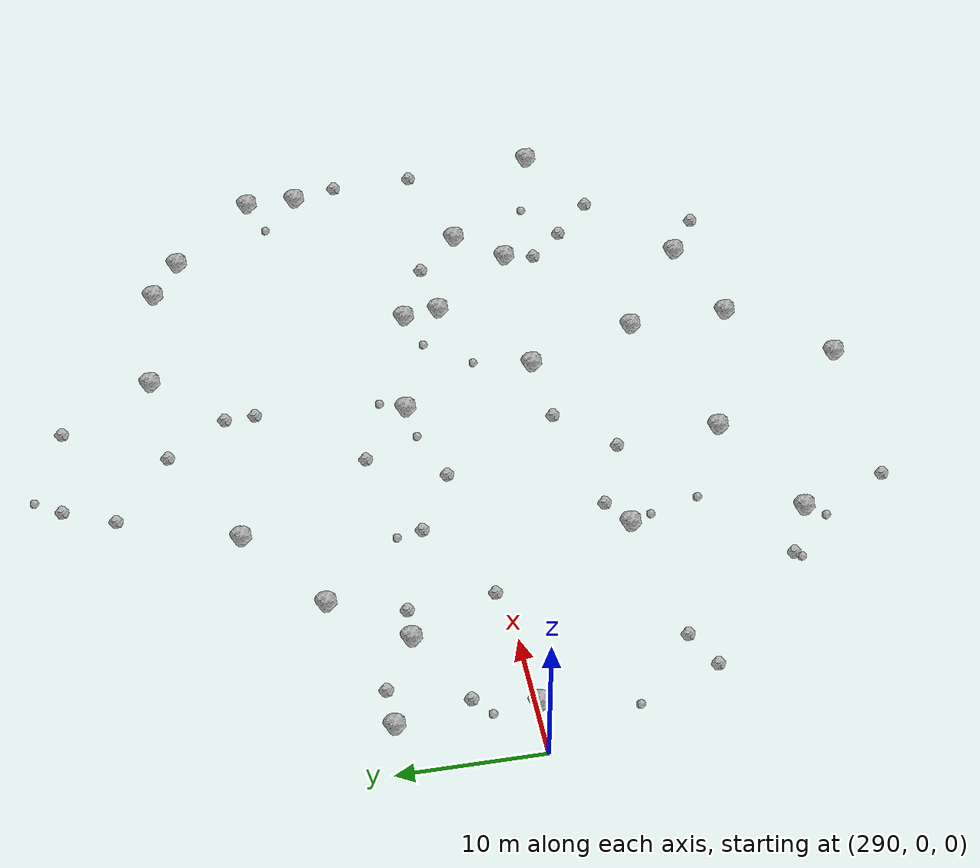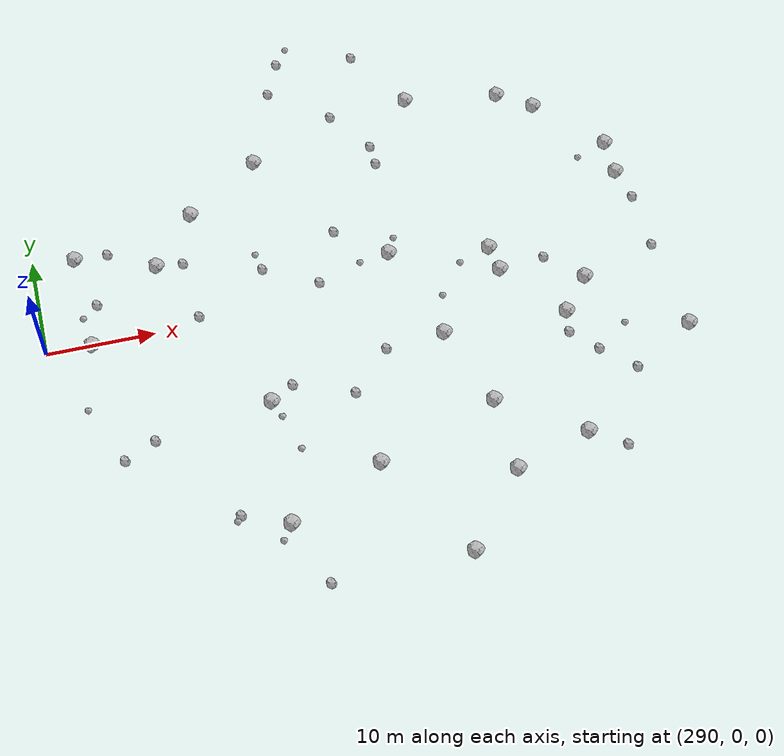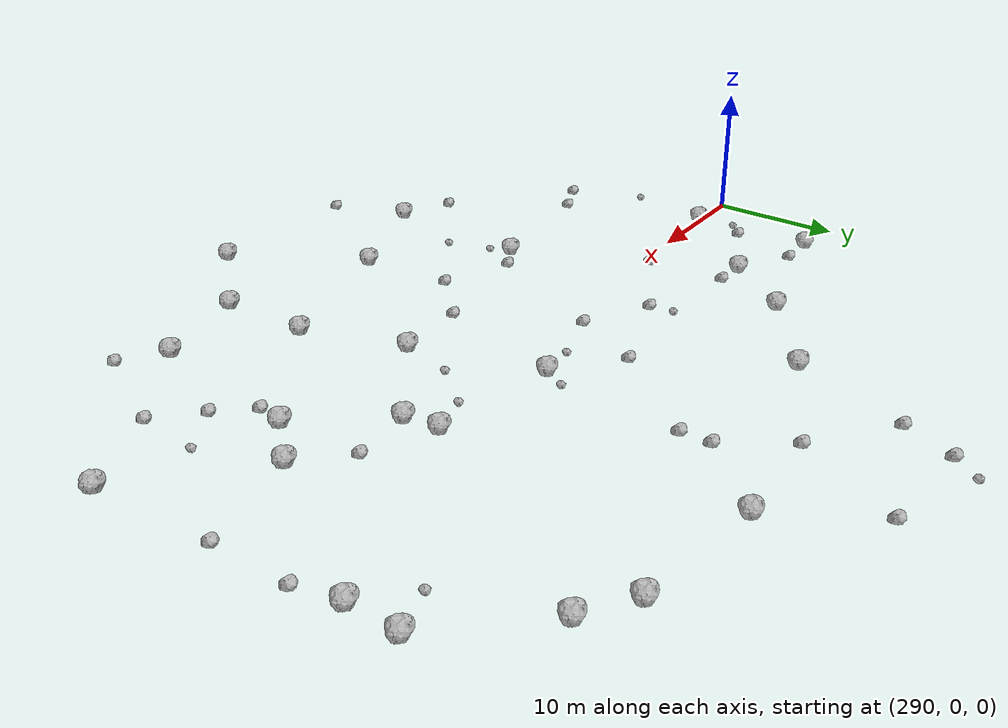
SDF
<sdf version="1.6">
 <world name="default">
  <include><uri>model://sun</uri></include>
  <model name="rock1_8_3">
   <include><uri>model://rock1</uri><pose>328.43702591106825 -20.61411175242175 0.5 0 0 0</pose></include>
  </model>
  <model name="rock1_8_4">
   <include><uri>model://rock1</uri><pose>346.1354318403808 7.804568667765082 0.5 0 0 0</pose></include>
  </model>
  <model name="rock1_8_5">
   <include><uri>model://rock1</uri><pose>294.23555661602387 -0.18307107181446725 0.5 0 0 0</pose></include>
  </model>
  <model name="rock1_8_6">
   <include><uri>model://rock1</uri><pose>331.96288717905463 2.063088433536336 0.5 0 0 0</pose></include>
  </model>
  <model name="rock1_8_7">
   <include><uri>model://rock1</uri><pose>322.6732659214008 3.553655479058129 0.5 0 0 0</pose></include>
  </model>
  <model name="rock1_8_8">
   <include><uri>model://rock1</uri><pose>328.41306128745765 20.73763982570499 0.5 0 0 0</pose></include>
  </model>
  <model name="rock1_8_9">
   <include><uri>model://rock1</uri><pose>325.57811226364686 -5.960517945531301 0.5 0 0 0</pose></include>
  </model>
  <model name="rock1_8_10">
   <include><uri>model://rock1</uri><pose>293.9414784934971 9.306967253368832 0.5 0 0 0</pose></include>
  </model>
  <model name="rock1_8_11">
   <include><uri>model://rock1</uri><pose>337.08170398458026 -6.238114233391066 0.5 0 0 0</pose></include>
  </model>
  <model name="rock1_8_12">
   <include><uri>model://rock1</uri><pose>346.1421919360903 11.337615647639737 0.5 0 0 0</pose></include>
  </model>
  <model name="rock1_8_13">
   <include><uri>model://rock1</uri><pose>308.9215091887029 -9.437391317145995 0.5 0 0 0</pose></include>
  </model>
  <model name="rock1_8_14">
   <include><uri>model://rock1</uri><pose>301.2582460645662 6.921089213386431 0.5 0 0 0</pose></include>
  </model>
  <model name="rock1_8_15">
   <include><uri>model://rock1</uri><pose>305.3453700261631 11.917312601185564 0.5 0 0 0</pose></include>
  </model>
  <model name="rock1_8_16">
   <include><uri>model://rock1</uri><pose>312.3305679034215 16.579343884902862 0.5 0 0 0</pose></include>
  </model>
  <model name="rock1_8_17">
   <include><uri>model://rock1</uri><pose>337.4285881018303 19.381162525811888 0.5 0 0 0</pose></include>
  </model>
  <model name="rock1_8_18">
   <include><uri>model://rock1</uri><pose>347.6119154249063 -9.918581239386288 0.5 0 0 0</pose></include>
  </model>
  <model name="rock1_8_19">
   <include><uri>model://rock1</uri><pose>340.57917501151996 17.261756702841524 0.5 0 0 0</pose></include>
  </model>
  <model name="rock1_8_20">
   <include><uri>model://rock1</uri><pose>335.4667548010724 -18.483373783245938 0.5 0 0 0</pose></include>
  </model>
  <model name="rock1_8_21">
   <include><uri>model://rock1</uri><pose>339.78260607783113 -3.0093914235672266 0.5 0 0 0</pose></include>
  </model>
  <model name="rock1_8_22">
   <include><uri>model://rock1</uri><pose>322.8649739917529 -27.190455071053623 0.5 0 0 0</pose></include>
  </model>
  <model name="rock1_8_23">
   <include><uri>model://rock1</uri><pose>328.1901574372221 -13.652274353527705 0.5 0 0 0</pose></include>
  </model>
  <model name="rock1_8_24">
   <include><uri>model://rock1</uri><pose>308.2829579019994 -21.32150028119012 0.5 0 0 0</pose></include>
  </model>
  <model name="rock1_8_25">
   <include><uri>model://rock1</uri><pose>316.9957758863079 -17.40563793574804 0.5 0 0 0</pose></include>
  </model>
  <model name="rock1_8_26">
   <include><uri>model://rock1</uri><pose>332.3296251428886 -0.4890464656975162 0.5 0 0 0</pose></include>
  </model>
  <model name="rock2_8_0">
   <include><uri>model://rock2</uri><pose>346.9130944559839 -0.9071594233775997 0.3 0 0 0</pose></include>
  </model>
  <model name="rock2_8_1">
   <include><uri>model://rock2</uri><pose>346.80866617206743 4.749485994518956 0.3 0 0 0</pose></include>
  </model>
  <model name="rock2_8_2">
   <include><uri>model://rock2</uri><pose>320.046583834345 -6.361025320403627 0.3 0 0 0</pose></include>
  </model>
  <model name="rock2_8_3">
   <include><uri>model://rock2</uri><pose>303.6732329090602 6.758037642825968 0.3 0 0 0</pose></include>
  </model>
  <model name="rock2_8_4">
   <include><uri>model://rock2</uri><pose>316.35550084291265 -10.136331680077134 0.3 0 0 0</pose></include>
  </model>
  <model name="rock2_8_5">
   <include><uri>model://rock2</uri><pose>320.69926353586237 20.444531738732778 0.3 0 0 0</pose></include>
  </model>
  <model name="rock2_8_6">
   <include><uri>model://rock2</uri><pose>310.360754835111 -27.304783933658317 0.3 0 0 0</pose></include>
  </model>
  <model name="rock2_8_7">
   <include><uri>model://rock2</uri><pose>324.3461538225422 27.344286640947622 0.3 0 0 0</pose></include>
  </model>
  <model name="rock2_8_8">
   <include><uri>model://rock2</uri><pose>341.63588032188477 -13.184267727577506 0.3 0 0 0</pose></include>
  </model>
  <model name="rock2_8_9">
   <include><uri>model://rock2</uri><pose>316.8279415592725 28.12419955734363 0.3 0 0 0</pose></include>
  </model>
  <model name="rock2_8_10">
   <include><uri>model://rock2</uri><pose>296.9525109496279 9.305035109443672 0.3 0 0 0</pose></include>
  </model>
  <model name="rock2_8_11">
   <include><uri>model://rock2</uri><pose>298.20584394002896 -10.930687872121105 0.3 0 0 0</pose></include>
  </model>
  <model name="rock2_8_12">
   <include><uri>model://rock2</uri><pose>336.6782516902722 -8.3189164725589 0.3 0 0 0</pose></include>
  </model>
  <model name="rock2_8_13">
   <include><uri>model://rock2</uri><pose>323.733029916918 16.094688722552874 0.3 0 0 0</pose></include>
  </model>
  <model name="rock2_8_14">
   <include><uri>model://rock2</uri><pose>304.17875981710625 -19.60298164538475 0.3 0 0 0</pose></include>
  </model>
  <model name="rock2_8_15">
   <include><uri>model://rock2</uri><pose>311.0243464260613 -8.11104305219401 0.3 0 0 0</pose></include>
  </model>
  <model name="rock2_8_16">
   <include><uri>model://rock2</uri><pose>338.4473731137122 -20.43859126393564 0.3 0 0 0</pose></include>
  </model>
  <model name="rock2_8_17">
   <include><uri>model://rock2</uri><pose>295.3111473585574 -12.278311687228182 0.3 0 0 0</pose></include>
  </model>
  <model name="rock2_8_18">
   <include><uri>model://rock2</uri><pose>315.2773551262393 24.6314204596339 0.3 0 0 0</pose></include>
  </model>
  <model name="rock2_8_19">
   <include><uri>model://rock2</uri><pose>304.15463072531594 0.7418326187313866 0.3 0 0 0</pose></include>
  </model>
  <model name="rock2_8_20">
   <include><uri>model://rock2</uri><pose>295.2202194418063 4.041112420386661 0.3 0 0 0</pose></include>
  </model>
  <model name="rock2_8_21">
   <include><uri>model://rock2</uri><pose>315.64154069705967 1.897061849876323 0.3 0 0 0</pose></include>
  </model>
  <model name="rock2_8_22">
   <include><uri>model://rock2</uri><pose>338.82274678087674 -10.61479890327417 0.3 0 0 0</pose></include>
  </model>
  <model name="rock2_8_23">
   <include><uri>model://rock2</uri><pose>323.79419597246647 13.972896956702655 0.3 0 0 0</pose></include>
  </model>
  <model name="rock2_8_24">
   <include><uri>model://rock2</uri><pose>336.6360908091549 -0.0010396275316360004 0.3 0 0 0</pose></include>
  </model>
  <model name="rock2_8_25">
   <include><uri>model://rock2</uri><pose>310.7586943851936 4.488327801151385 0.3 0 0 0</pose></include>
  </model>
  <model name="rock2_8_26">
   <include><uri>model://rock2</uri><pose>318.1260031454013 7.108459827973505 0.3 0 0 0</pose></include>
  </model>
  <model name="rock3_8_0">
   <include><uri>model://rock3</uri><pose>310.5262218697457 -14.476986979787176 0.2 0 0 0</pose></include>
  </model>
  <model name="rock3_8_1">
   <include><uri>model://rock3</uri><pose>318.09512623243353 29.84629216175604 0.2 0 0 0</pose></include>
  </model>
  <model name="rock3_8_2">
   <include><uri>model://rock3</uri><pose>328.90113641011595 1.14193859531769 0.2 0 0 0</pose></include>
  </model>
  <model name="rock3_8_3">
   <include><uri>model://rock3</uri><pose>326.42925999113044 -1.96881261534417 0.2 0 0 0</pose></include>
  </model>
  <model name="rock3_8_4">
   <include><uri>model://rock3</uri><pose>323.4692005962881 5.216615661113636 0.2 0 0 0</pose></include>
  </model>
  <model name="rock3_8_5">
   <include><uri>model://rock3</uri><pose>292.8826761974462 -6.6338566636522245 0.2 0 0 0</pose></include>
  </model>
  <model name="rock3_8_6">
   <include><uri>model://rock3</uri><pose>343.11665792479715 10.34586055255366 0.2 0 0 0</pose></include>
  </model>
  <model name="rock3_8_7">
   <include><uri>model://rock3</uri><pose>303.7954327382928 -20.08192262137559 0.2 0 0 0</pose></include>
  </model>
  <model name="rock3_8_8">
   <include><uri>model://rock3</uri><pose>319.799420129911 3.2160088988621283 0.2 0 0 0</pose></include>
  </model>
  <model name="rock3_8_9">
   <include><uri>model://rock3</uri><pose>310.4286244882958 6.239628619989297 0.2 0 0 0</pose></include>
  </model>
  <model name="rock3_8_10">
   <include><uri>model://rock3</uri><pose>293.7955236147619 2.867684267630331 0.2 0 0 0</pose></include>
  </model>
  <model name="rock3_8_11">
   <include><uri>model://rock3</uri><pose>341.92294784197446 -8.497184039442569 0.2 0 0 0</pose></include>
  </model>
  <model name="rock3_8_12">
   <include><uri>model://rock3</uri><pose>307.2764687239264 -22.656481748725493 0.2 0 0 0</pose></include>
  </model>
  <model name="rock3_8_13">
   <include><uri>model://rock3</uri><pose>309.522611522933 -11.013819483558077 0.2 0 0 0</pose></include>
  </model>
 </world>
</sdf>
